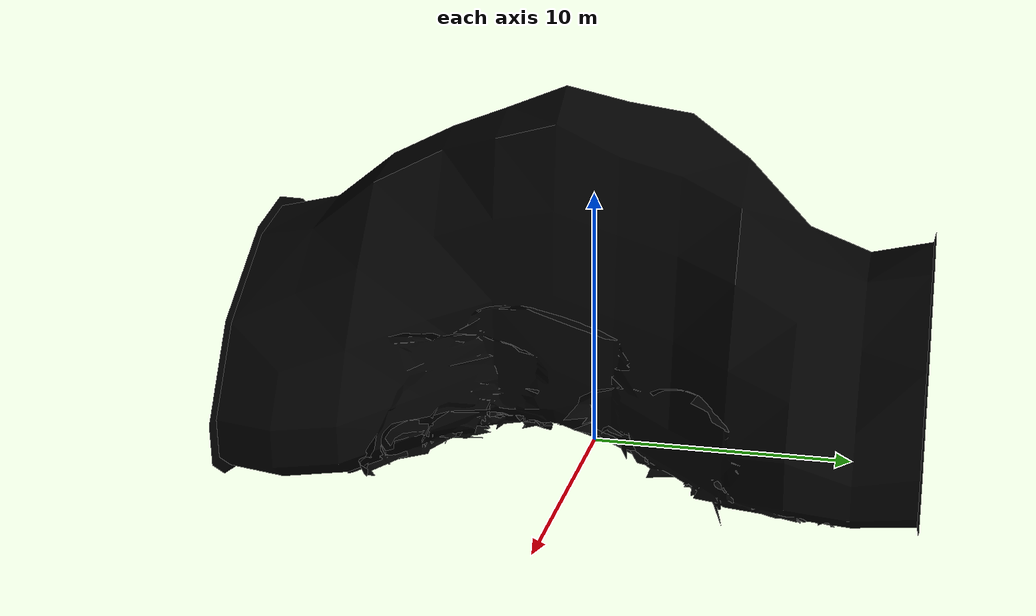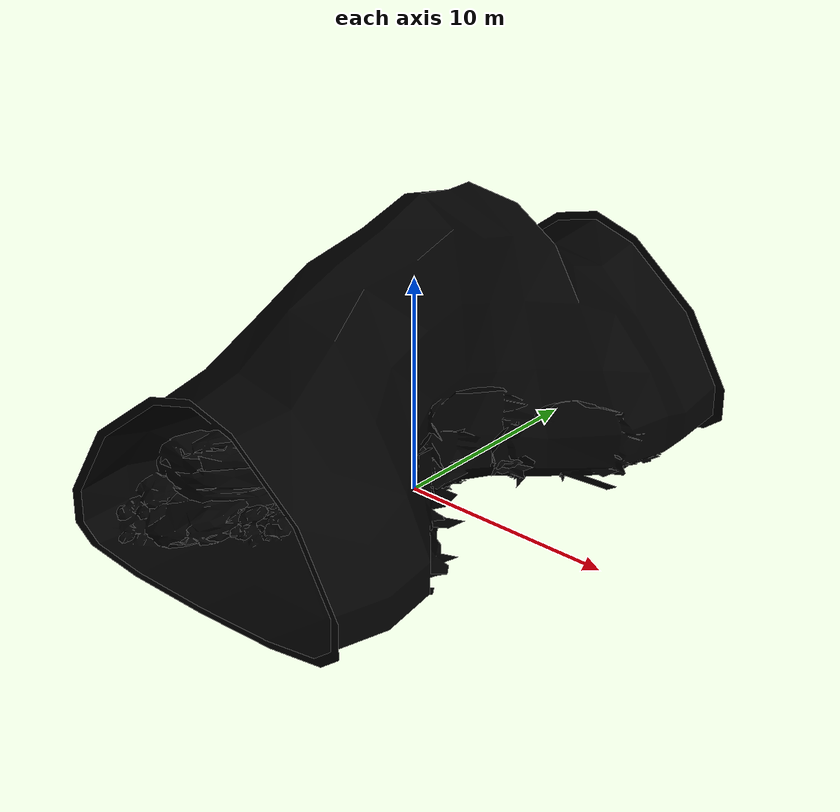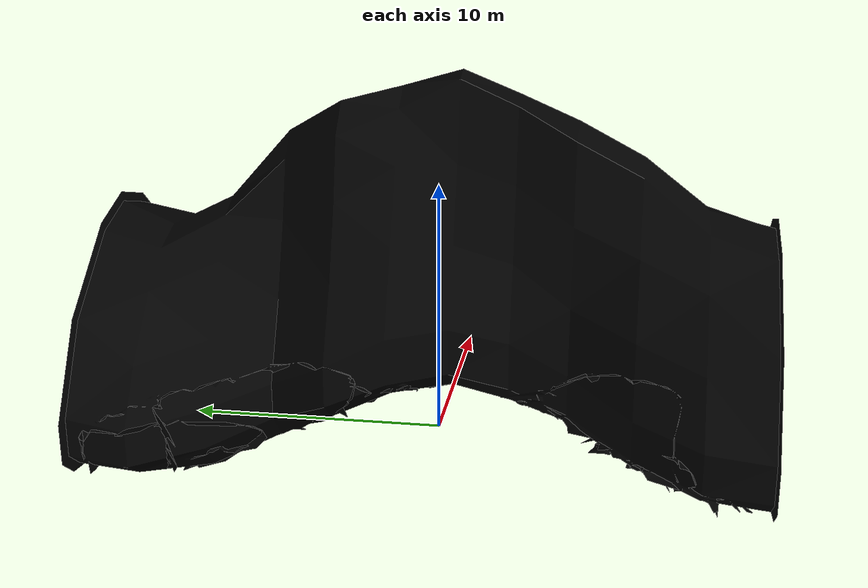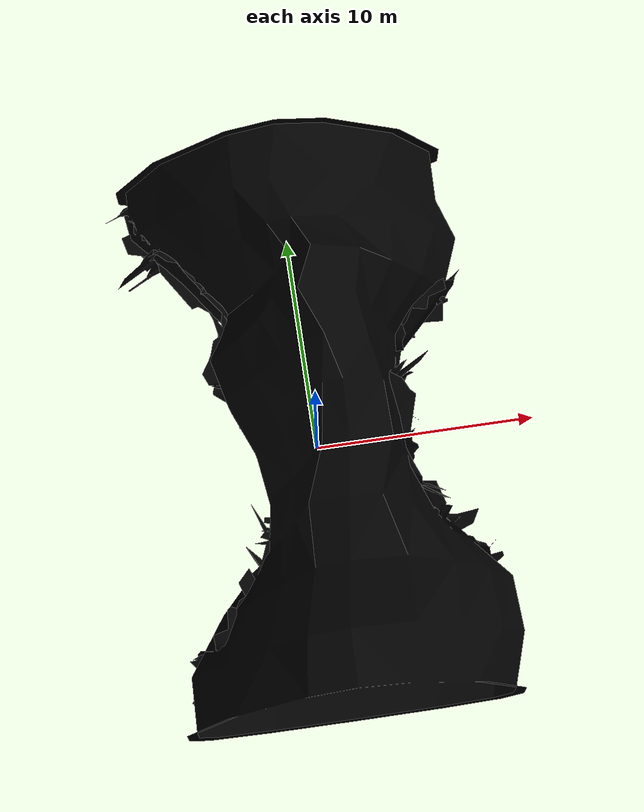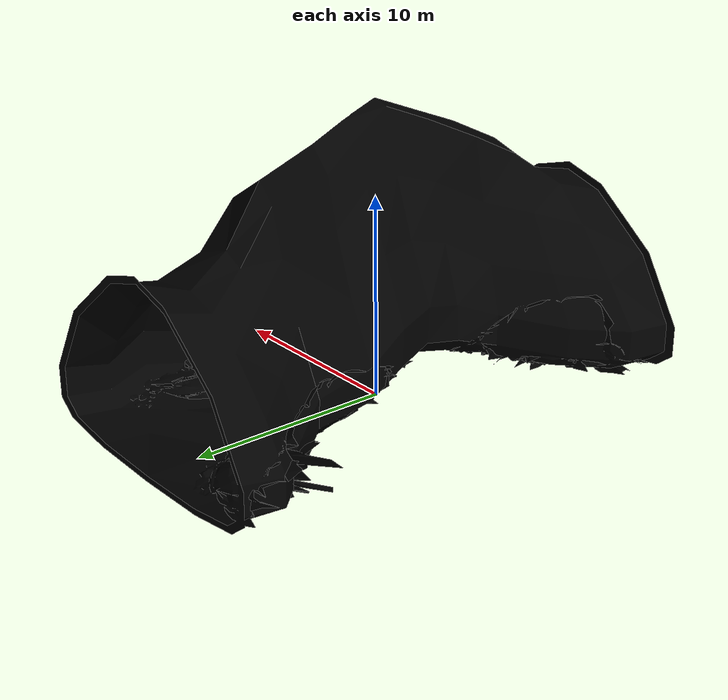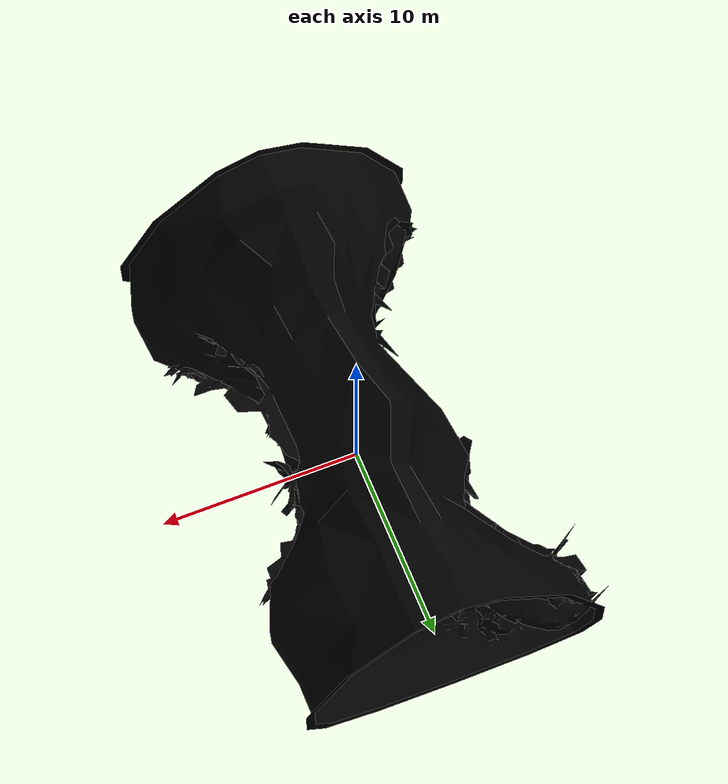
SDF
<sdf version="1.6">
  <model name="Cave Straight 02 Lights Type B">
    <include>
      <name>cave_straight_02</name>
      <uri>model://Cave Straight 02 Type B</uri>
    </include>
    <static>true</static>
    <link name="lights">
      <light name="spot_light1" type="spot">
        <pose>0 5.0 3.5 0 0 0</pose>
        <diffuse>0 0 0 1</diffuse>
        <specular>0 0 0 1</specular>
        <attenuation>
          <range>20</range>
          <linear>0.2</linear>
          <constant>0.5</constant>
          <quadratic>0.02</quadratic>
        </attenuation>
        <spot>
          <inner_angle>2.0</inner_angle>
          <outer_angle>3.1</outer_angle>
          <falloff>1.0</falloff>
        </spot>
        <cast_shadows>false</cast_shadows>
      </light>

      <light name="spot_light2" type="spot">
        <pose>0 -5.5 4.5 0 0 0</pose>
        <diffuse>0 0 0 1</diffuse>
        <specular>0 0 0 1</specular>
        <attenuation>
          <range>20</range>
          <linear>0.2</linear>
          <constant>0.5</constant>
          <quadratic>0.02</quadratic>
        </attenuation>
        <spot>
          <inner_angle>2.0</inner_angle>
          <outer_angle>3.1</outer_angle>
          <falloff>1.0</falloff>
        </spot>
        <cast_shadows>false</cast_shadows>
      </light>
    </link>
  </model>
</sdf>

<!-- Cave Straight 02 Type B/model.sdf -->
<sdf version="1.6">
  <model name="Cave Straight 02 Type B">
    <static>true</static>
    <link name="base_link">
      <collision name="collision">
        <pose>0 0 0 0 0 0</pose>
        <geometry>
          <mesh>
            <uri>model://Cave Straight 02 Type B/meshes/cavestraight02.dae</uri>
            <scale>1.005 1.005 1.0</scale>
          </mesh>
        </geometry>
      </collision>
      <visual name="StriatedRock_visual">
        <geometry>
          <mesh>
            <uri>model://Cave Straight 02 Type B/meshes/cavestraight02.dae</uri>
            <scale>1.005 1.005 1.0</scale>
            <submesh>
              <name>StriatedRock</name>
              <center>false</center>
            </submesh>
          </mesh>
        </geometry>
        <material>
          <diffuse>0 0 0 1</diffuse>
          <specular>0 0 0 1</specular>
          <pbr>
            <metal>
              <albedo_map>model://Cave Straight 02 Type B/materials/textures/StriatedRock_Albedo.png</albedo_map>
              <normal_map>model://Cave Straight 02 Type B/materials/textures/StriatedRock_Normal.png</normal_map>
              <roughness_map>model://Cave Straight 02 Type B/materials/textures/StriatedRock_Roughness.png</roughness_map>
            </metal>
          </pbr>

          <script>
            <uri>model://Cave Straight 02 Type B/materials/scripts/</uri>
            <uri>model://Cave Straight 02 Type B/materials/textures/</uri>
            <name>CaveTile/StriatedRock_Diffuse</name>
          </script>
        </material>
      </visual>
      <visual name="RockPile_visual">
        <geometry>
          <mesh>
            <uri>model://Cave Straight 02 Type B/meshes/cavestraight02.dae</uri>
            <scale>1.005 1.005 1.0</scale>
            <submesh>
              <name>RockPile</name>
              <center>false</center>
            </submesh>
          </mesh>
        </geometry>
        <material>
          <diffuse>0 0 0 1</diffuse>
          <specular>0 0 0 1</specular>
          <pbr>
            <metal>
              <albedo_map>model://Cave Straight 02 Type B/materials/textures/RockPile_Albedo.png</albedo_map>
              <normal_map>model://Cave Straight 02 Type B/materials/textures/RockPile_Normal.png</normal_map>
              <roughness_map>model://Cave Straight 02 Type B/materials/textures/RockPile_Roughness.png</roughness_map>
            </metal>
          </pbr>

          <script>
            <uri>model://Cave Straight 02 Type B/materials/scripts/</uri>
            <uri>model://Cave Straight 02 Type B/materials/textures/</uri>
            <name>CaveTile/RockPile_Diffuse</name>
          </script>
        </material>
      </visual>
      <visual name="CaveWall_visual">
        <geometry>
          <mesh>
            <uri>model://Cave Straight 02 Type B/meshes/cavestraight02.dae</uri>
            <scale>1.005 1.005 1.0</scale>
            <submesh>
              <name>CaveWall</name>
              <center>false</center>
            </submesh>
          </mesh>
        </geometry>
        <material>
          <diffuse>0 0 0 1</diffuse>
          <specular>0 0 0 1</specular>
          <pbr>
            <metal>
              <albedo_map>model://Cave Straight 02 Type B/materials/textures/CaveWall_Albedo.png</albedo_map>
              <normal_map>model://Cave Straight 02 Type B/materials/textures/CaveWall_Normal.png</normal_map>
              <roughness_map>model://Cave Straight 02 Type B/materials/textures/CaveWall_Roughness.png</roughness_map>
            </metal>
          </pbr>

          <script>
            <uri>model://Cave Straight 02 Type B/materials/scripts/</uri>
            <uri>model://Cave Straight 02 Type B/materials/textures/</uri>
            <name>CaveTile/CaveWall_Diffuse</name>
          </script>
        </material>
      </visual>
    </link>
  </model>
</sdf>
